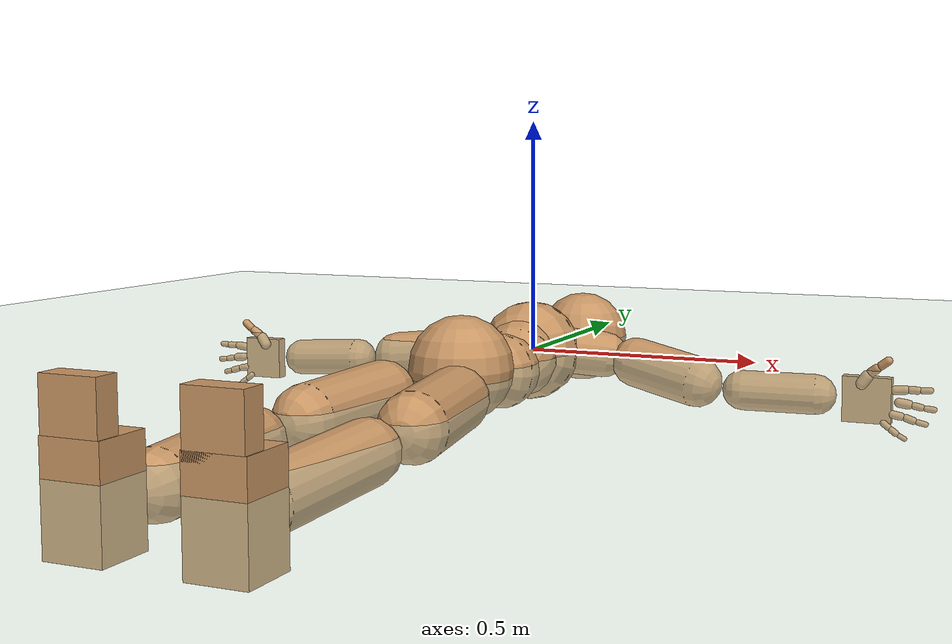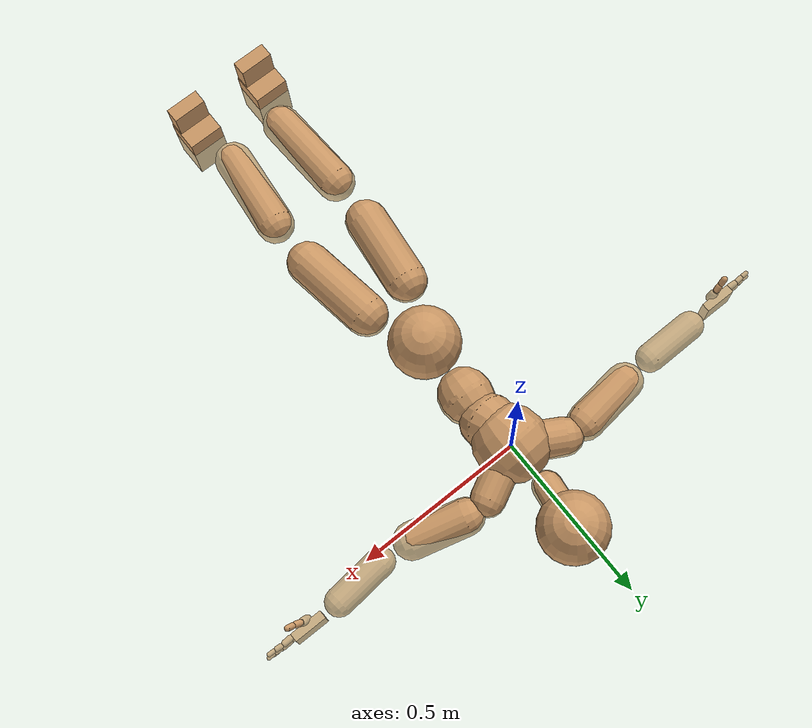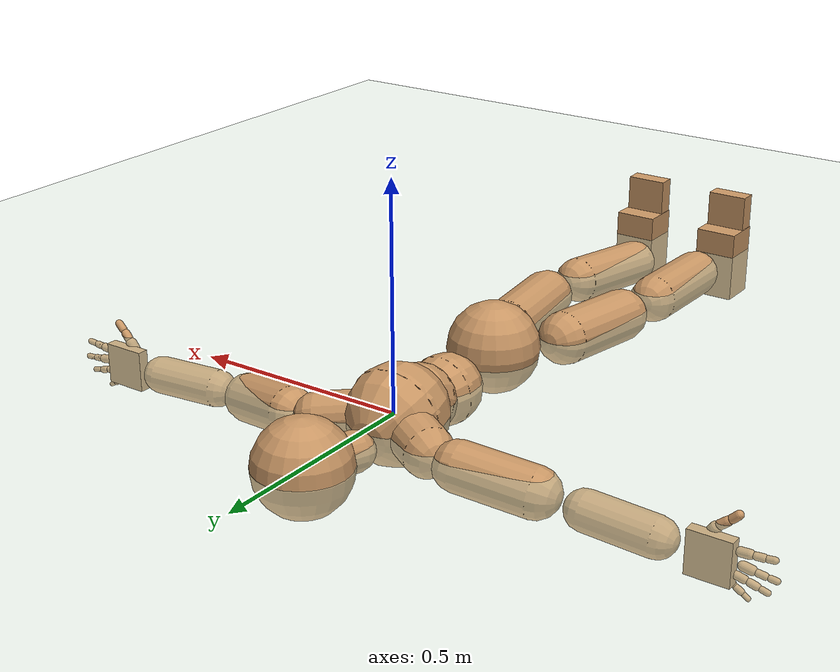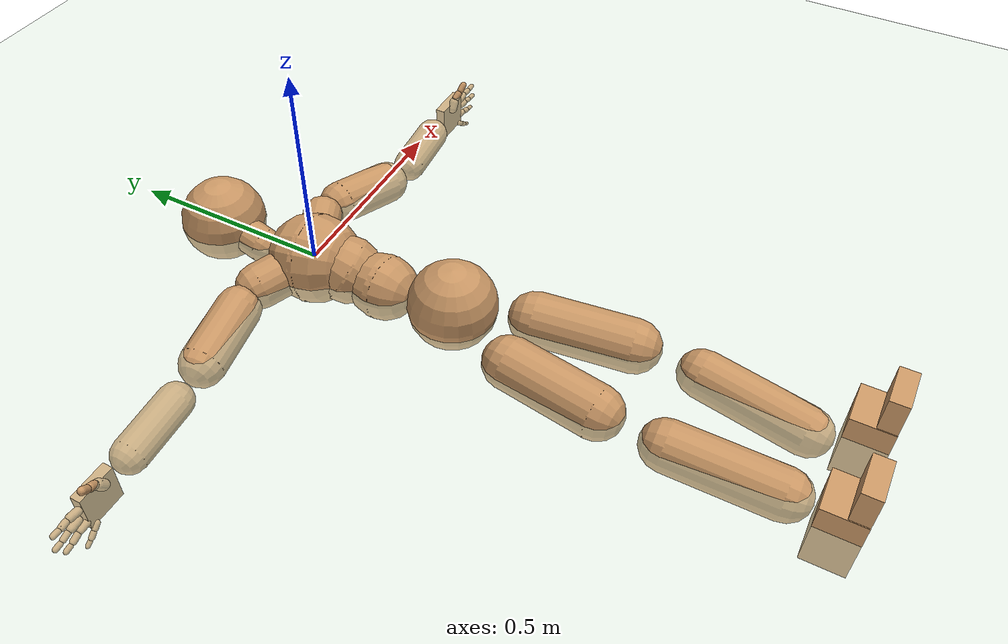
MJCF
<mujoco model="humanoid">
  <compiler coordinate="local"/>
  <default>
    <joint damping="0.0" armature="0.01" stiffness="0.0" limited="true"/>
    <geom conaffinity="1" condim="3" contype="7" margin="0.001" rgba="0.8 0.6 .4 1"/>
  </default>
  <asset>
    <texture type="skybox" builtin="gradient" rgb1=".4 .5 .6" rgb2="0 0 0" width="100" height="100"/>
    <texture builtin="flat" height="1278" mark="cross" markrgb="1 1 1" name="texgeom" random="0.01" rgb1="0.8 0.6 0.4" rgb2="0.8 0.6 0.4" type="cube" width="127"/>
    <texture builtin="checker" height="100" name="texplane" rgb1="0 0 0" rgb2="0.8 0.8 0.8" type="2d" width="100"/>
    <material name="MatPlane" reflectance="0.5" shininess="1" specular="1" texrepeat="60 60" texture="texplane"/>
    <material name="geom" texture="texgeom" texuniform="true"/>
  </asset>
  <worldbody>
    <light cutoff="100" diffuse="1 1 1" dir="-0 0 -1.3" directional="true" exponent="1" pos="0 0 1.3" specular=".1 .1 .1"/>
    <geom conaffinity="1" condim="3" name="floor" pos="0 0 0" rgba="0.8 0.9 0.8 1" size="100 100 .2" type="plane" material="MatPlane"/>
    <body name="Pelvis" pos="0.0033 -0.3741 0.0149">
      <freejoint name="Pelvis"/>
      <geom type="sphere" contype="1" conaffinity="1" density="4629.6296296296305" size="0.1043" pos="0.0000 0.0000 0.0000" name="Pelvis"/>
      <body name="L_Hip" pos="0.0613 -0.097 -0.0256">
        <joint name="L_Hip_x" type="hinge" pos="0 0 0" axis="1 0 0" user="250 2.5 1 500 10 2" armature="0.01" range="-90.0000 90.0000" damping="0" stiffness="0"/>
        <joint name="L_Hip_y" type="hinge" pos="0 0 0" axis="0 1 0" user="250 2.5 1 500 10 2" armature="0.01" range="-90.0000 90.0000" damping="0" stiffness="0"/>
        <joint name="L_Hip_z" type="hinge" pos="0 0 0" axis="0 0 1" user="250 2.5 1 500 10 2" armature="0.01" range="-90.0000 90.0000" damping="0" stiffness="0"/>
        <geom type="capsule" contype="1" conaffinity="1" density="2040.816327" fromto="0.0110 -0.0755 -0.0018 0.0441 -0.3020 -0.0071" size="0.0626" name="L_Hip"/>
        <body name="L_Knee" pos="0.0551 -0.3775 -0.0089">
          <joint name="L_Knee_x" type="hinge" pos="0 0 0" axis="1 0 0" user="250 2.5 1 500 10 2" armature="0.01" range="-180.0000 180.0000" damping="0" stiffness="0"/>
          <joint name="L_Knee_y" type="hinge" pos="0 0 0" axis="0 1 0" user="250 2.5 1 500 10 2" armature="0.01" range="-5.6250 5.6250" damping="0" stiffness="0"/>
          <joint name="L_Knee_z" type="hinge" pos="0 0 0" axis="0 0 1" user="250 2.5 1 500 10 2" armature="0.01" range="-5.6250 5.6250" damping="0" stiffness="0"/>
          <geom type="capsule" contype="1" conaffinity="1" density="1234.567901" fromto="-0.0092 -0.0808 -0.0067 -0.0367 -0.3233 -0.0268" size="0.0553" name="L_Knee"/>
          <body name="L_Ankle" pos="-0.0459 -0.4042 -0.0336">
            <joint name="L_Ankle_x" type="hinge" pos="0 0 0" axis="1 0 0" user="150 2.5 1 500 10 2" armature="0.01" range="-90.0000 90.0000" damping="0" stiffness="0"/>
            <joint name="L_Ankle_y" type="hinge" pos="0 0 0" axis="0 1 0" user="150 2.5 1 500 10 2" armature="0.01" range="-90.0000 90.0000" damping="0" stiffness="0"/>
            <joint name="L_Ankle_z" type="hinge" pos="0 0 0" axis="0 0 1" user="150 2.5 1 500 10 2" armature="0.01" range="-90.0000 90.0000" damping="0" stiffness="0"/>
            <geom type="box" density="450.99886" pos="0.0427 -0.0287 0.0234" size="0.0513 0.047 0.0872" quat="1.0000 0.0000 0.0000 0.0000" name="L_Ankle"/>
            <body name="L_Toe" pos="0.0496 -0.058 0.12">
              <joint name="L_Toe_x" type="hinge" pos="0 0 0" axis="1 0 0" user="150 1 1 500 1 1" armature="0.01" range="-90.0000 90.0000" damping="0" stiffness="0"/>
              <joint name="L_Toe_y" type="hinge" pos="0 0 0" axis="0 1 0" user="150 1 1 500 1 1" armature="0.01" range="-45.0000 45.0000" damping="0" stiffness="0"/>
              <joint name="L_Toe_z" type="hinge" pos="0 0 0" axis="0 0 1" user="150 1 1 500 1 1" armature="0.01" range="-45.0000 45.0000" damping="0" stiffness="0"/>
              <geom type="box" density="420.15556" pos="-0.0069 0.0032 0.0260" size="0.0491 0.0209 0.0504" quat="1.0000 0.0000 0.0000 0.0000" name="L_Toe"/>
            </body>
          </body>
        </body>
      </body>
      <body name="R_Hip" pos="-0.0663 -0.1085 -0.0206">
        <joint name="R_Hip_x" type="hinge" pos="0 0 0" axis="1 0 0" user="250 2.5 1 500 10 2" armature="0.01" range="-90.0000 90.0000" damping="0" stiffness="0"/>
        <joint name="R_Hip_y" type="hinge" pos="0 0 0" axis="0 1 0" user="250 2.5 1 500 10 2" armature="0.01" range="-90.0000 90.0000" damping="0" stiffness="0"/>
        <joint name="R_Hip_z" type="hinge" pos="0 0 0" axis="0 0 1" user="250 2.5 1 500 10 2" armature="0.01" range="-90.0000 90.0000" damping="0" stiffness="0"/>
        <geom type="capsule" contype="1" conaffinity="1" density="2040.816327" fromto="-0.0089 -0.0722 -0.0034 -0.0355 -0.2887 -0.0135" size="0.0619" name="R_Hip"/>
        <body name="R_Knee" pos="-0.0444 -0.3609 -0.0169">
          <joint name="R_Knee_x" type="hinge" pos="0 0 0" axis="1 0 0" user="250 2.5 1 500 10 2" armature="0.01" range="-180.0000 180.0000" damping="0" stiffness="0"/>
          <joint name="R_Knee_y" type="hinge" pos="0 0 0" axis="0 1 0" user="250 2.5 1 500 10 2" armature="0.01" range="-5.6250 5.6250" damping="0" stiffness="0"/>
          <joint name="R_Knee_z" type="hinge" pos="0 0 0" axis="0 0 1" user="250 2.5 1 500 10 2" armature="0.01" range="-5.6250 5.6250" damping="0" stiffness="0"/>
          <geom type="capsule" contype="1" conaffinity="1" density="1234.567901" fromto="0.0032 -0.0823 -0.0043 0.0130 -0.3294 -0.0170" size="0.0571" name="R_Knee"/>
          <body name="R_Ankle" pos="0.0162 -0.4117 -0.0213">
            <joint name="R_Ankle_x" type="hinge" pos="0 0 0" axis="1 0 0" user="150 1 1 500 10 2" armature="0.01" range="-90.0000 90.0000" damping="0" stiffness="0"/>
            <joint name="R_Ankle_y" type="hinge" pos="0 0 0" axis="0 1 0" user="150 1 1 500 10 2" armature="0.01" range="-90.0000 90.0000" damping="0" stiffness="0"/>
            <joint name="R_Ankle_z" type="hinge" pos="0 0 0" axis="0 0 1" user="150 1 1 500 10 2" armature="0.01" range="-90.0000 90.0000" damping="0" stiffness="0"/>
            <geom type="box" density="450.986534" pos="-0.0252 -0.0263 0.0141" size="0.0513 0.047 0.0872" quat="1.0000 0.0000 0.0000 0.0000" name="R_Ankle"/>
            <body name="R_Toe" pos="-0.0403 -0.0583 0.1208">
              <joint name="R_Toe_x" type="hinge" pos="0 0 0" axis="1 0 0" user="150 1 1 500 1 1" armature="0.01" range="-90.0000 90.0000" damping="0" stiffness="0"/>
              <joint name="R_Toe_y" type="hinge" pos="0 0 0" axis="0 1 0" user="150 1 1 500 1 1" armature="0.01" range="-45.0000 45.0000" damping="0" stiffness="0"/>
              <joint name="R_Toe_z" type="hinge" pos="0 0 0" axis="0 0 1" user="150 1 1 500 1 1" armature="0.01" range="-45.0000 45.0000" damping="0" stiffness="0"/>
              <geom type="box" density="420.154717" pos="0.0151 0.0059 0.0159" size="0.0491 0.0209 0.0504" quat="1.0000 0.0000 0.0000 0.0000" name="R_Toe"/>
            </body>
          </body>
        </body>
      </body>
      <body name="Torso" pos="-0.0031 0.1153 -0.0305">
        <joint name="Torso_x" type="hinge" pos="0 0 0" axis="1 0 0" user="500 5 1 500 10 2" armature="0.01" range="-60.0000 60.0000" damping="0" stiffness="0"/>
        <joint name="Torso_y" type="hinge" pos="0 0 0" axis="0 1 0" user="500 5 1 500 10 2" armature="0.01" range="-60.0000 60.0000" damping="0" stiffness="0"/>
        <joint name="Torso_z" type="hinge" pos="0 0 0" axis="0 0 1" user="500 5 1 500 10 2" armature="0.01" range="-60.0000 60.0000" damping="0" stiffness="0"/>
        <geom type="capsule" contype="1" conaffinity="1" density="2040.816327" fromto="0.0049 0.0628 -0.0030 0.0060 0.0768 -0.0037" size="0.0776" name="Torso"/>
        <body name="Spine" pos="0.0109 0.1397 -0.0067">
          <joint name="Spine_x" type="hinge" pos="0 0 0" axis="1 0 0" user="500 5 1 500 10 2" armature="0.01" range="-60.0000 60.0000" damping="0" stiffness="0"/>
          <joint name="Spine_y" type="hinge" pos="0 0 0" axis="0 1 0" user="500 5 1 500 10 2" armature="0.01" range="-60.0000 60.0000" damping="0" stiffness="0"/>
          <joint name="Spine_z" type="hinge" pos="0 0 0" axis="0 0 1" user="500 5 1 500 10 2" armature="0.01" range="-60.0000 60.0000" damping="0" stiffness="0"/>
          <geom type="capsule" contype="1" conaffinity="1" density="2040.816327" fromto="-0.0055 0.0247 0.0141 -0.0067 0.0301 0.0172" size="0.0807" name="Spine"/>
          <body name="Chest" pos="-0.0121 0.0548 0.0313">
            <joint name="Chest_x" type="hinge" pos="0 0 0" axis="1 0 0" user="500 5 1 500 10 2" armature="0.01" range="-60.0000 60.0000" damping="0" stiffness="0"/>
            <joint name="Chest_y" type="hinge" pos="0 0 0" axis="0 1 0" user="500 5 1 500 10 2" armature="0.01" range="-60.0000 60.0000" damping="0" stiffness="0"/>
            <joint name="Chest_z" type="hinge" pos="0 0 0" axis="0 0 1" user="500 5 1 500 10 2" armature="0.01" range="-60.0000 60.0000" damping="0" stiffness="0"/>
            <geom type="capsule" contype="1" conaffinity="1" density="2040.816327" fromto="-0.0023 0.0528 -0.0089 -0.0028 0.0646 -0.0109" size="0.1073" name="Chest"/>
            <body name="Neck" pos="-0.0129 0.1744 -0.0355">
              <joint name="Neck_x" type="hinge" pos="0 0 0" axis="1 0 0" user="150 1 1 250 50 4" armature="0.01" range="-180.0000 180.0000" damping="0" stiffness="0"/>
              <joint name="Neck_y" type="hinge" pos="0 0 0" axis="0 1 0" user="150 1 1 250 50 4" armature="0.01" range="-180.0000 180.0000" damping="0" stiffness="0"/>
              <joint name="Neck_z" type="hinge" pos="0 0 0" axis="0 0 1" user="150 1 1 250 50 4" armature="0.01" range="-180.0000 180.0000" damping="0" stiffness="0"/>
              <geom type="capsule" contype="1" conaffinity="1" density="1000" fromto="0.0051 0.0335 0.0043 0.0205 0.1340 0.0171" size="0.0435" name="Neck"/>
              <body name="Head" pos="0.0256 0.1675 0.0214">
                <joint name="Head_x" type="hinge" pos="0 0 0" axis="1 0 0" user="150 1 1 250 50 4" armature="0.01" range="-90.0000 90.0000" damping="0" stiffness="0"/>
                <joint name="Head_y" type="hinge" pos="0 0 0" axis="0 1 0" user="150 1 1 250 50 4" armature="0.01" range="-90.0000 90.0000" damping="0" stiffness="0"/>
                <joint name="Head_z" type="hinge" pos="0 0 0" axis="0 0 1" user="150 1 1 250 50 4" armature="0.01" range="-90.0000 90.0000" damping="0" stiffness="0"/>
                <geom type="sphere" contype="1" conaffinity="1" density="1000" size="0.1035" pos="0.0000 0.0000 0.0000" name="Head"/>
              </body>
            </body>
            <body name="L_Thorax" pos="0.0467 0.0892 -0.0089">
              <joint name="L_Thorax_x" type="hinge" pos="0 0 0" axis="1 0 0" user="200 2 1 500 50 4" armature="0.01" range="-180.0000 180.0000" damping="0" stiffness="0"/>
              <joint name="L_Thorax_y" type="hinge" pos="0 0 0" axis="0 1 0" user="200 2 1 500 50 4" armature="0.01" range="-180.0000 180.0000" damping="0" stiffness="0"/>
              <joint name="L_Thorax_z" type="hinge" pos="0 0 0" axis="0 0 1" user="200 2 1 500 50 4" armature="0.01" range="-180.0000 180.0000" damping="0" stiffness="0"/>
              <geom type="capsule" contype="1" conaffinity="1" density="1000" fromto="0.0239 0.0120 -0.0034 0.0957 0.0478 -0.0136" size="0.0502" name="L_Thorax"/>
              <body name="L_Shoulder" pos="0.1197 0.0598 -0.017">
                <joint name="L_Shoulder_x" type="hinge" pos="0 0 0" axis="1 0 0" user="200 2 1 500 50 4" armature="0.01" range="-180.0000 180.0000" damping="0" stiffness="0"/>
                <joint name="L_Shoulder_y" type="hinge" pos="0 0 0" axis="0 1 0" user="200 2 1 500 50 4" armature="0.01" range="-180.0000 180.0000" damping="0" stiffness="0"/>
                <joint name="L_Shoulder_z" type="hinge" pos="0 0 0" axis="0 0 1" user="200 2 1 500 50 4" armature="0.01" range="-180.0000 180.0000" damping="0" stiffness="0"/>
                <geom type="capsule" contype="1" conaffinity="1" density="1000" fromto="0.0505 -0.0147 -0.0088 0.2022 -0.0586 -0.0354" size="0.0539" name="L_Shoulder"/>
                <body name="L_Elbow" pos="0.2527 -0.0733 -0.0442">
                  <joint name="L_Elbow_x" type="hinge" pos="0 0 0" axis="1 0 0" user="150 1 1 150 10 2" armature="0.01" range="-720.0000 720.0000" damping="0" stiffness="0"/>
                  <joint name="L_Elbow_y" type="hinge" pos="0 0 0" axis="0 1 0" user="150 1 1 150 10 2" armature="0.01" range="-720.0000 720.0000" damping="0" stiffness="0"/>
                  <joint name="L_Elbow_z" type="hinge" pos="0 0 0" axis="0 0 1" user="150 1 1 150 10 2" armature="0.01" range="-720.0000 720.0000" damping="0" stiffness="0"/>
                  <geom type="capsule" contype="1" conaffinity="1" density="1000" fromto="0.0505 0.0049 -0.0004 0.2019 0.0196 -0.0015" size="0.0417" name="L_Elbow"/>
                  <body name="L_Wrist" pos="0.2523 0.0245 -0.0018">
                    <joint name="L_Wrist_x" type="hinge" pos="0 0 0" axis="1 0 0" user="100 1 1 150 1 1" armature="0.01" range="-180.0000 180.0000" damping="0" stiffness="0"/>
                    <joint name="L_Wrist_y" type="hinge" pos="0 0 0" axis="0 1 0" user="100 1 1 150 1 1" armature="0.01" range="-180.0000 180.0000" damping="0" stiffness="0"/>
                    <joint name="L_Wrist_z" type="hinge" pos="0 0 0" axis="0 0 1" user="100 1 1 150 1 1" armature="0.01" range="-180.0000 180.0000" damping="0" stiffness="0"/>
                    <geom type="box" density="1205.156738" pos="0.0531 -0.0011 -0.0031" size="0.0492 0.0126 0.0471" quat="1.0000 0.0000 0.0000 0.0000" name="L_Wrist"/>
                    <body name="L_Index1" pos="0.1034 -0.0085 0.0199">
                      <joint name="L_Index1_x" type="hinge" pos="0 0 0" axis="1 0 0" user="100 10 1 150" armature="0.01" range="-180.0000 180.0000" damping="0" stiffness="0"/>
                      <joint name="L_Index1_y" type="hinge" pos="0 0 0" axis="0 1 0" user="100 10 1 150" armature="0.01" range="-180.0000 180.0000" damping="0" stiffness="0"/>
                      <joint name="L_Index1_z" type="hinge" pos="0 0 0" axis="0 0 1" user="100 10 1 150" armature="0.01" range="-180.0000 180.0000" damping="0" stiffness="0"/>
                      <geom type="capsule" contype="1" conaffinity="1" density="1000" fromto="0.0065 0.0005 0.0006 0.0258 0.0019 0.0024" size="0.0094" name="L_Index1"/>
                      <body name="L_Index2" pos="0.0323 0.0024 0.003">
                        <joint name="L_Index2_x" type="hinge" pos="0 0 0" axis="1 0 0" user="100 10 1 150" armature="0.01" range="-180.0000 180.0000" damping="0" stiffness="0"/>
                        <joint name="L_Index2_y" type="hinge" pos="0 0 0" axis="0 1 0" user="100 10 1 150" armature="0.01" range="-180.0000 180.0000" damping="0" stiffness="0"/>
                        <joint name="L_Index2_z" type="hinge" pos="0 0 0" axis="0 0 1" user="100 10 1 150" armature="0.01" range="-180.0000 180.0000" damping="0" stiffness="0"/>
                        <geom type="capsule" contype="1" conaffinity="1" density="1000" fromto="0.0045 -0.0005 -0.0000 0.0182 -0.0019 -0.0000" size="0.0078" name="L_Index2"/>
                        <body name="L_Index3" pos="0.0227 -0.0024 0">
                          <joint name="L_Index3_x" type="hinge" pos="0 0 0" axis="1 0 0" user="100 10 1 150" armature="0.01" range="-180.0000 180.0000" damping="0" stiffness="0"/>
                          <joint name="L_Index3_y" type="hinge" pos="0 0 0" axis="0 1 0" user="100 10 1 150" armature="0.01" range="-180.0000 180.0000" damping="0" stiffness="0"/>
                          <joint name="L_Index3_z" type="hinge" pos="0 0 0" axis="0 0 1" user="100 10 1 150" armature="0.01" range="-180.0000 180.0000" damping="0" stiffness="0"/>
                          <geom type="capsule" contype="1" conaffinity="1" density="1000" fromto="0.0049 -0.0001 0.0004 0.0198 -0.0003 0.0016" size="0.0065" name="L_Index3"/>
                        </body>
                      </body>
                    </body>
                    <body name="L_Middle1" pos="0.111 -0.006 -0.004">
                      <joint name="L_Middle1_x" type="hinge" pos="0 0 0" axis="1 0 0" user="100 10 1 150" armature="0.01" range="-180.0000 180.0000" damping="0" stiffness="0"/>
                      <joint name="L_Middle1_y" type="hinge" pos="0 0 0" axis="0 1 0" user="100 10 1 150" armature="0.01" range="-180.0000 180.0000" damping="0" stiffness="0"/>
                      <joint name="L_Middle1_z" type="hinge" pos="0 0 0" axis="0 0 1" user="100 10 1 150" armature="0.01" range="-180.0000 180.0000" damping="0" stiffness="0"/>
                      <geom type="capsule" contype="1" conaffinity="1" density="1000" fromto="0.0062 0.0002 -0.0008 0.0247 0.0007 -0.0033" size="0.0096" name="L_Middle1"/>
                      <body name="L_Middle2" pos="0.0309 0.0009 -0.0041">
                        <joint name="L_Middle2_x" type="hinge" pos="0 0 0" axis="1 0 0" user="100 10 1 150" armature="0.01" range="-180.0000 180.0000" damping="0" stiffness="0"/>
                        <joint name="L_Middle2_y" type="hinge" pos="0 0 0" axis="0 1 0" user="100 10 1 150" armature="0.01" range="-180.0000 180.0000" damping="0" stiffness="0"/>
                        <joint name="L_Middle2_z" type="hinge" pos="0 0 0" axis="0 0 1" user="100 10 1 150" armature="0.01" range="-180.0000 180.0000" damping="0" stiffness="0"/>
                        <geom type="capsule" contype="1" conaffinity="1" density="1000" fromto="0.0047 -0.0004 -0.0008 0.0189 -0.0016 -0.0034" size="0.0071" name="L_Middle2"/>
                        <body name="L_Middle3" pos="0.0237 -0.002 -0.0042">
                          <joint name="L_Middle3_x" type="hinge" pos="0 0 0" axis="1 0 0" user="100 10 1 150" armature="0.01" range="-180.0000 180.0000" damping="0" stiffness="0"/>
                          <joint name="L_Middle3_y" type="hinge" pos="0 0 0" axis="0 1 0" user="100 10 1 150" armature="0.01" range="-180.0000 180.0000" damping="0" stiffness="0"/>
                          <joint name="L_Middle3_z" type="hinge" pos="0 0 0" axis="0 0 1" user="100 10 1 150" armature="0.01" range="-180.0000 180.0000" damping="0" stiffness="0"/>
                          <geom type="capsule" contype="1" conaffinity="1" density="1000" fromto="0.0051 -0.0000 -0.0004 0.0205 -0.0000 -0.0018" size="0.0062" name="L_Middle3"/>
                        </body>
                      </body>
                    </body>
                    <body name="L_Pinky1" pos="0.0853 -0.0147 -0.0448">
                      <joint name="L_Pinky1_x" type="hinge" pos="0 0 0" axis="1 0 0" user="100 10 1 150" armature="0.01" range="-180.0000 180.0000" damping="0" stiffness="0"/>
                      <joint name="L_Pinky1_y" type="hinge" pos="0 0 0" axis="0 1 0" user="100 10 1 150" armature="0.01" range="-180.0000 180.0000" damping="0" stiffness="0"/>
                      <joint name="L_Pinky1_z" type="hinge" pos="0 0 0" axis="0 0 1" user="100 10 1 150" armature="0.01" range="-180.0000 180.0000" damping="0" stiffness="0"/>
                      <geom type="capsule" contype="1" conaffinity="1" density="1000" fromto="0.0031 -0.0002 -0.0024 0.0126 -0.0010 -0.0097" size="0.0068" name="L_Pinky1"/>
                      <body name="L_Pinky2" pos="0.0157 -0.0012 -0.0121">
                        <joint name="L_Pinky2_x" type="hinge" pos="0 0 0" axis="1 0 0" user="100 10 1 150" armature="0.01" range="-180.0000 180.0000" damping="0" stiffness="0"/>
                        <joint name="L_Pinky2_y" type="hinge" pos="0 0 0" axis="0 1 0" user="100 10 1 150" armature="0.01" range="-180.0000 180.0000" damping="0" stiffness="0"/>
                        <joint name="L_Pinky2_z" type="hinge" pos="0 0 0" axis="0 0 1" user="100 10 1 150" armature="0.01" range="-180.0000 180.0000" damping="0" stiffness="0"/>
                        <geom type="capsule" contype="1" conaffinity="1" density="1000" fromto="0.0031 -0.0003 -0.0022 0.0126 -0.0014 -0.0090" size="0.0066" name="L_Pinky2"/>
                        <body name="L_Pinky3" pos="0.0157 -0.0017 -0.0112">
                          <joint name="L_Pinky3_x" type="hinge" pos="0 0 0" axis="1 0 0" user="100 10 1 150" armature="0.01" range="-180.0000 180.0000" damping="0" stiffness="0"/>
                          <joint name="L_Pinky3_y" type="hinge" pos="0 0 0" axis="0 1 0" user="100 10 1 150" armature="0.01" range="-180.0000 180.0000" damping="0" stiffness="0"/>
                          <joint name="L_Pinky3_z" type="hinge" pos="0 0 0" axis="0 0 1" user="100 10 1 150" armature="0.01" range="-180.0000 180.0000" damping="0" stiffness="0"/>
                          <geom type="capsule" contype="1" conaffinity="1" density="1000" fromto="0.0035 0.0001 -0.0018 0.0142 0.0002 -0.0074" size="0.005" name="L_Pinky3"/>
                        </body>
                      </body>
                    </body>
                    <body name="L_Ring1" pos="0.0989 -0.0091 -0.028">
                      <joint name="L_Ring1_x" type="hinge" pos="0 0 0" axis="1 0 0" user="100 10 1 150" armature="0.01" range="-180.0000 180.0000" damping="0" stiffness="0"/>
                      <joint name="L_Ring1_y" type="hinge" pos="0 0 0" axis="0 1 0" user="100 10 1 150" armature="0.01" range="-180.0000 180.0000" damping="0" stiffness="0"/>
                      <joint name="L_Ring1_z" type="hinge" pos="0 0 0" axis="0 0 1" user="100 10 1 150" armature="0.01" range="-180.0000 180.0000" damping="0" stiffness="0"/>
                      <geom type="capsule" contype="1" conaffinity="1" density="1000" fromto="0.0057 0.0003 -0.0011 0.0227 0.0013 -0.0042" size="0.0082" name="L_Ring1"/>
                      <body name="L_Ring2" pos="0.0284 0.0016 -0.0053">
                        <joint name="L_Ring2_x" type="hinge" pos="0 0 0" axis="1 0 0" user="100 10 1 150" armature="0.01" range="-180.0000 180.0000" damping="0" stiffness="0"/>
                        <joint name="L_Ring2_y" type="hinge" pos="0 0 0" axis="0 1 0" user="100 10 1 150" armature="0.01" range="-180.0000 180.0000" damping="0" stiffness="0"/>
                        <joint name="L_Ring2_z" type="hinge" pos="0 0 0" axis="0 0 1" user="100 10 1 150" armature="0.01" range="-180.0000 180.0000" damping="0" stiffness="0"/>
                        <geom type="capsule" contype="1" conaffinity="1" density="1000" fromto="0.0046 -0.0003 -0.0014 0.0184 -0.0012 -0.0057" size="0.0076" name="L_Ring2"/>
                        <body name="L_Ring3" pos="0.023 -0.0015 -0.0072">
                          <joint name="L_Ring3_x" type="hinge" pos="0 0 0" axis="1 0 0" user="100 10 1 150" armature="0.01" range="-180.0000 180.0000" damping="0" stiffness="0"/>
                          <joint name="L_Ring3_y" type="hinge" pos="0 0 0" axis="0 1 0" user="100 10 1 150" armature="0.01" range="-180.0000 180.0000" damping="0" stiffness="0"/>
                          <joint name="L_Ring3_z" type="hinge" pos="0 0 0" axis="0 0 1" user="100 10 1 150" armature="0.01" range="-180.0000 180.0000" damping="0" stiffness="0"/>
                          <geom type="capsule" contype="1" conaffinity="1" density="1000" fromto="0.0050 0.0001 -0.0010 0.0200 0.0004 -0.0041" size="0.0058" name="L_Ring3"/>
                        </body>
                      </body>
                    </body>
                    <body name="L_Thumb1" pos="0.041 -0.0184 0.0266">
                      <joint name="L_Thumb1_x" type="hinge" pos="0 0 0" axis="1 0 0" user="100 10 1 150" armature="0.01" range="-180.0000 180.0000" damping="0" stiffness="0"/>
                      <joint name="L_Thumb1_y" type="hinge" pos="0 0 0" axis="0 1 0" user="100 10 1 150" armature="0.01" range="-180.0000 180.0000" damping="0" stiffness="0"/>
                      <joint name="L_Thumb1_z" type="hinge" pos="0 0 0" axis="0 0 1" user="100 10 1 150" armature="0.01" range="-180.0000 180.0000" damping="0" stiffness="0"/>
                      <geom type="capsule" contype="1" conaffinity="1" density="1000" fromto="0.0034 0.0002 0.0051 0.0138 0.0009 0.0203" size="0.0124" name="L_Thumb1"/>
                      <body name="L_Thumb2" pos="0.0172 0.0011 0.0254">
                        <joint name="L_Thumb2_x" type="hinge" pos="0 0 0" axis="1 0 0" user="100 10 1 150" armature="0.01" range="-180.0000 180.0000" damping="0" stiffness="0"/>
                        <joint name="L_Thumb2_y" type="hinge" pos="0 0 0" axis="0 1 0" user="100 10 1 150" armature="0.01" range="-180.0000 180.0000" damping="0" stiffness="0"/>
                        <joint name="L_Thumb2_z" type="hinge" pos="0 0 0" axis="0 0 1" user="100 10 1 150" armature="0.01" range="-180.0000 180.0000" damping="0" stiffness="0"/>
                        <geom type="capsule" contype="1" conaffinity="1" density="1000" fromto="0.0042 -0.0010 0.0031 0.0167 -0.0042 0.0125" size="0.0098" name="L_Thumb2"/>
                        <body name="L_Thumb3" pos="0.0208 -0.0052 0.0157">
                          <joint name="L_Thumb3_x" type="hinge" pos="0 0 0" axis="1 0 0" user="100 10 1 150" armature="0.01" range="-180.0000 180.0000" damping="0" stiffness="0"/>
                          <joint name="L_Thumb3_y" type="hinge" pos="0 0 0" axis="0 1 0" user="100 10 1 150" armature="0.01" range="-180.0000 180.0000" damping="0" stiffness="0"/>
                          <joint name="L_Thumb3_z" type="hinge" pos="0 0 0" axis="0 0 1" user="100 10 1 150" armature="0.01" range="-180.0000 180.0000" damping="0" stiffness="0"/>
                          <geom type="capsule" contype="1" conaffinity="1" density="1000" fromto="0.0046 -0.0006 0.0035 0.0183 -0.0026 0.0141" size="0.0089" name="L_Thumb3"/>
                        </body>
                      </body>
                    </body>
                  </body>
                </body>
              </body>
            </body>
            <body name="R_Thorax" pos="-0.0491 0.0886 -0.0152">
              <joint name="R_Thorax_x" type="hinge" pos="0 0 0" axis="1 0 0" user="200 2 1 150 10 2" armature="0.01" range="-180.0000 180.0000" damping="0" stiffness="0"/>
              <joint name="R_Thorax_y" type="hinge" pos="0 0 0" axis="0 1 0" user="200 2 1 150 10 2" armature="0.01" range="-180.0000 180.0000" damping="0" stiffness="0"/>
              <joint name="R_Thorax_z" type="hinge" pos="0 0 0" axis="0 0 1" user="200 2 1 150 10 2" armature="0.01" range="-180.0000 180.0000" damping="0" stiffness="0"/>
              <geom type="capsule" contype="1" conaffinity="1" density="1000" fromto="-0.0205 0.0110 -0.0029 -0.0822 0.0441 -0.0115" size="0.0552" name="R_Thorax"/>
              <body name="R_Shoulder" pos="-0.1027 0.0551 -0.0144">
                <joint name="R_Shoulder_x" type="hinge" pos="0 0 0" axis="1 0 0" user="200 2 1 250 10 2" armature="0.01" range="-180.0000 180.0000" damping="0" stiffness="0"/>
                <joint name="R_Shoulder_y" type="hinge" pos="0 0 0" axis="0 1 0" user="200 2 1 250 10 2" armature="0.01" range="-180.0000 180.0000" damping="0" stiffness="0"/>
                <joint name="R_Shoulder_z" type="hinge" pos="0 0 0" axis="0 0 1" user="200 2 1 250 10 2" armature="0.01" range="-180.0000 180.0000" damping="0" stiffness="0"/>
                <geom type="capsule" contype="1" conaffinity="1" density="1000" fromto="-0.0540 -0.0071 -0.0055 -0.2159 -0.0285 -0.0219" size="0.0538" name="R_Shoulder"/>
                <body name="R_Elbow" pos="-0.2699 -0.0356 -0.0273">
                  <joint name="R_Elbow_x" type="hinge" pos="0 0 0" axis="1 0 0" user="150 1 1 150 10 2" armature="0.01" range="-720.0000 720.0000" damping="0" stiffness="0"/>
                  <joint name="R_Elbow_y" type="hinge" pos="0 0 0" axis="0 1 0" user="150 1 1 150 10 2" armature="0.01" range="-720.0000 720.0000" damping="0" stiffness="0"/>
                  <joint name="R_Elbow_z" type="hinge" pos="0 0 0" axis="0 0 1" user="150 1 1 150 10 2" armature="0.01" range="-720.0000 720.0000" damping="0" stiffness="0"/>
                  <geom type="capsule" contype="1" conaffinity="1" density="1000" fromto="-0.0499 -0.0009 -0.0030 -0.1997 -0.0038 -0.0120" size="0.042" name="R_Elbow"/>
                  <body name="R_Wrist" pos="-0.2496 -0.0047 -0.0149">
                    <joint name="R_Wrist_x" type="hinge" pos="0 0 0" axis="1 0 0" user="100 1 1 150 1 1" armature="0.01" range="-180.0000 180.0000" damping="0" stiffness="0"/>
                    <joint name="R_Wrist_y" type="hinge" pos="0 0 0" axis="0 1 0" user="100 1 1 150 1 1" armature="0.01" range="-180.0000 180.0000" damping="0" stiffness="0"/>
                    <joint name="R_Wrist_z" type="hinge" pos="0 0 0" axis="0 0 1" user="100 1 1 150 1 1" armature="0.01" range="-180.0000 180.0000" damping="0" stiffness="0"/>
                    <geom type="box" density="1238.501672" pos="-0.0546 -0.0043 -0.0032" size="0.0462 0.0126 0.0471" quat="1.0000 0.0000 0.0000 0.0000" name="R_Wrist"/>
                    <body name="R_Index1" pos="-0.1015 -0.0116 0.0199">
                      <joint name="R_Index1_x" type="hinge" pos="0 0 0" axis="1 0 0" user="100 10 1 150" armature="0.01" range="-180.0000 180.0000" damping="0" stiffness="0"/>
                      <joint name="R_Index1_y" type="hinge" pos="0 0 0" axis="0 1 0" user="100 10 1 150" armature="0.01" range="-180.0000 180.0000" damping="0" stiffness="0"/>
                      <joint name="R_Index1_z" type="hinge" pos="0 0 0" axis="0 0 1" user="100 10 1 150" armature="0.01" range="-180.0000 180.0000" damping="0" stiffness="0"/>
                      <geom type="capsule" contype="1" conaffinity="1" density="1000" fromto="-0.0065 0.0005 0.0006 -0.0258 0.0019 0.0024" size="0.0094" name="R_Index1"/>
                      <body name="R_Index2" pos="-0.0323 0.0024 0.003">
                        <joint name="R_Index2_x" type="hinge" pos="0 0 0" axis="1 0 0" user="100 10 1 150" armature="0.01" range="-180.0000 180.0000" damping="0" stiffness="0"/>
                        <joint name="R_Index2_y" type="hinge" pos="0 0 0" axis="0 1 0" user="100 10 1 150" armature="0.01" range="-180.0000 180.0000" damping="0" stiffness="0"/>
                        <joint name="R_Index2_z" type="hinge" pos="0 0 0" axis="0 0 1" user="100 10 1 150" armature="0.01" range="-180.0000 180.0000" damping="0" stiffness="0"/>
                        <geom type="capsule" contype="1" conaffinity="1" density="1000" fromto="-0.0045 -0.0005 -0.0000 -0.0182 -0.0019 -0.0000" size="0.0078" name="R_Index2"/>
                        <body name="R_Index3" pos="-0.0227 -0.0024 0">
                          <joint name="R_Index3_x" type="hinge" pos="0 0 0" axis="1 0 0" user="100 10 1 150" armature="0.01" range="-180.0000 180.0000" damping="0" stiffness="0"/>
                          <joint name="R_Index3_y" type="hinge" pos="0 0 0" axis="0 1 0" user="100 10 1 150" armature="0.01" range="-180.0000 180.0000" damping="0" stiffness="0"/>
                          <joint name="R_Index3_z" type="hinge" pos="0 0 0" axis="0 0 1" user="100 10 1 150" armature="0.01" range="-180.0000 180.0000" damping="0" stiffness="0"/>
                          <geom type="capsule" contype="1" conaffinity="1" density="1000" fromto="-0.0041 -0.0001 0.0004 -0.0166 -0.0003 0.0016" size="0.0068" name="R_Index3"/>
                        </body>
                      </body>
                    </body>
                    <body name="R_Middle1" pos="-0.109 -0.0091 -0.0041">
                      <joint name="R_Middle1_x" type="hinge" pos="0 0 0" axis="1 0 0" user="100 10 1 150" armature="0.01" range="-180.0000 180.0000" damping="0" stiffness="0"/>
                      <joint name="R_Middle1_y" type="hinge" pos="0 0 0" axis="0 1 0" user="100 10 1 150" armature="0.01" range="-180.0000 180.0000" damping="0" stiffness="0"/>
                      <joint name="R_Middle1_z" type="hinge" pos="0 0 0" axis="0 0 1" user="100 10 1 150" armature="0.01" range="-180.0000 180.0000" damping="0" stiffness="0"/>
                      <geom type="capsule" contype="1" conaffinity="1" density="1000" fromto="-0.0062 0.0002 -0.0008 -0.0247 0.0007 -0.0033" size="0.0096" name="R_Middle1"/>
                      <body name="R_Middle2" pos="-0.0309 0.0009 -0.0041">
                        <joint name="R_Middle2_x" type="hinge" pos="0 0 0" axis="1 0 0" user="100 10 1 150" armature="0.01" range="-180.0000 180.0000" damping="0" stiffness="0"/>
                        <joint name="R_Middle2_y" type="hinge" pos="0 0 0" axis="0 1 0" user="100 10 1 150" armature="0.01" range="-180.0000 180.0000" damping="0" stiffness="0"/>
                        <joint name="R_Middle2_z" type="hinge" pos="0 0 0" axis="0 0 1" user="100 10 1 150" armature="0.01" range="-180.0000 180.0000" damping="0" stiffness="0"/>
                        <geom type="capsule" contype="1" conaffinity="1" density="1000" fromto="-0.0047 -0.0004 -0.0008 -0.0189 -0.0016 -0.0034" size="0.0071" name="R_Middle2"/>
                        <body name="R_Middle3" pos="-0.0237 -0.002 -0.0042">
                          <joint name="R_Middle3_x" type="hinge" pos="0 0 0" axis="1 0 0" user="100 10 1 150" armature="0.01" range="-180.0000 180.0000" damping="0" stiffness="0"/>
                          <joint name="R_Middle3_y" type="hinge" pos="0 0 0" axis="0 1 0" user="100 10 1 150" armature="0.01" range="-180.0000 180.0000" damping="0" stiffness="0"/>
                          <joint name="R_Middle3_z" type="hinge" pos="0 0 0" axis="0 0 1" user="100 10 1 150" armature="0.01" range="-180.0000 180.0000" damping="0" stiffness="0"/>
                          <geom type="capsule" contype="1" conaffinity="1" density="1000" fromto="-0.0043 -0.0000 -0.0004 -0.0173 -0.0000 -0.0018" size="0.0064" name="R_Middle3"/>
                        </body>
                      </body>
                    </body>
                    <body name="R_Pinky1" pos="-0.0833 -0.0178 -0.0449">
                      <joint name="R_Pinky1_x" type="hinge" pos="0 0 0" axis="1 0 0" user="100 10 1 150" armature="0.01" range="-180.0000 180.0000" damping="0" stiffness="0"/>
                      <joint name="R_Pinky1_y" type="hinge" pos="0 0 0" axis="0 1 0" user="100 10 1 150" armature="0.01" range="-180.0000 180.0000" damping="0" stiffness="0"/>
                      <joint name="R_Pinky1_z" type="hinge" pos="0 0 0" axis="0 0 1" user="100 10 1 150" armature="0.01" range="-180.0000 180.0000" damping="0" stiffness="0"/>
                      <geom type="capsule" contype="1" conaffinity="1" density="1000" fromto="-0.0031 -0.0002 -0.0024 -0.0126 -0.0010 -0.0097" size="0.0068" name="R_Pinky1"/>
                      <body name="R_Pinky2" pos="-0.0157 -0.0012 -0.0121">
                        <joint name="R_Pinky2_x" type="hinge" pos="0 0 0" axis="1 0 0" user="100 10 1 150" armature="0.01" range="-180.0000 180.0000" damping="0" stiffness="0"/>
                        <joint name="R_Pinky2_y" type="hinge" pos="0 0 0" axis="0 1 0" user="100 10 1 150" armature="0.01" range="-180.0000 180.0000" damping="0" stiffness="0"/>
                        <joint name="R_Pinky2_z" type="hinge" pos="0 0 0" axis="0 0 1" user="100 10 1 150" armature="0.01" range="-180.0000 180.0000" damping="0" stiffness="0"/>
                        <geom type="capsule" contype="1" conaffinity="1" density="1000" fromto="-0.0031 -0.0003 -0.0022 -0.0126 -0.0014 -0.0090" size="0.0066" name="R_Pinky2"/>
                        <body name="R_Pinky3" pos="-0.0157 -0.0017 -0.0112">
                          <joint name="R_Pinky3_x" type="hinge" pos="0 0 0" axis="1 0 0" user="100 10 1 150" armature="0.01" range="-180.0000 180.0000" damping="0" stiffness="0"/>
                          <joint name="R_Pinky3_y" type="hinge" pos="0 0 0" axis="0 1 0" user="100 10 1 150" armature="0.01" range="-180.0000 180.0000" damping="0" stiffness="0"/>
                          <joint name="R_Pinky3_z" type="hinge" pos="0 0 0" axis="0 0 1" user="100 10 1 150" armature="0.01" range="-180.0000 180.0000" damping="0" stiffness="0"/>
                          <geom type="capsule" contype="1" conaffinity="1" density="1000" fromto="-0.0027 0.0001 -0.0018 -0.0110 0.0002 -0.0074" size="0.0053" name="R_Pinky3"/>
                        </body>
                      </body>
                    </body>
                    <body name="R_Ring1" pos="-0.0969 -0.0122 -0.0281">
                      <joint name="R_Ring1_x" type="hinge" pos="0 0 0" axis="1 0 0" user="100 10 1 150" armature="0.01" range="-180.0000 180.0000" damping="0" stiffness="0"/>
                      <joint name="R_Ring1_y" type="hinge" pos="0 0 0" axis="0 1 0" user="100 10 1 150" armature="0.01" range="-180.0000 180.0000" damping="0" stiffness="0"/>
                      <joint name="R_Ring1_z" type="hinge" pos="0 0 0" axis="0 0 1" user="100 10 1 150" armature="0.01" range="-180.0000 180.0000" damping="0" stiffness="0"/>
                      <geom type="capsule" contype="1" conaffinity="1" density="1000" fromto="-0.0057 0.0003 -0.0011 -0.0227 0.0013 -0.0042" size="0.0082" name="R_Ring1"/>
                      <body name="R_Ring2" pos="-0.0284 0.0016 -0.0053">
                        <joint name="R_Ring2_x" type="hinge" pos="0 0 0" axis="1 0 0" user="100 10 1 150" armature="0.01" range="-180.0000 180.0000" damping="0" stiffness="0"/>
                        <joint name="R_Ring2_y" type="hinge" pos="0 0 0" axis="0 1 0" user="100 10 1 150" armature="0.01" range="-180.0000 180.0000" damping="0" stiffness="0"/>
                        <joint name="R_Ring2_z" type="hinge" pos="0 0 0" axis="0 0 1" user="100 10 1 150" armature="0.01" range="-180.0000 180.0000" damping="0" stiffness="0"/>
                        <geom type="capsule" contype="1" conaffinity="1" density="1000" fromto="-0.0046 -0.0003 -0.0014 -0.0184 -0.0012 -0.0057" size="0.0076" name="R_Ring2"/>
                        <body name="R_Ring3" pos="-0.023 -0.0015 -0.0072">
                          <joint name="R_Ring3_x" type="hinge" pos="0 0 0" axis="1 0 0" user="100 10 1 150" armature="0.01" range="-180.0000 180.0000" damping="0" stiffness="0"/>
                          <joint name="R_Ring3_y" type="hinge" pos="0 0 0" axis="0 1 0" user="100 10 1 150" armature="0.01" range="-180.0000 180.0000" damping="0" stiffness="0"/>
                          <joint name="R_Ring3_z" type="hinge" pos="0 0 0" axis="0 0 1" user="100 10 1 150" armature="0.01" range="-180.0000 180.0000" damping="0" stiffness="0"/>
                          <geom type="capsule" contype="1" conaffinity="1" density="1000" fromto="-0.0042 0.0001 -0.0010 -0.0168 0.0004 -0.0041" size="0.0061" name="R_Ring3"/>
                        </body>
                      </body>
                    </body>
                    <body name="R_Thumb1" pos="-0.0391 -0.0215 0.0265">
                      <joint name="R_Thumb1_x" type="hinge" pos="0 0 0" axis="1 0 0" user="100 10 1 150" armature="0.01" range="-180.0000 180.0000" damping="0" stiffness="0"/>
                      <joint name="R_Thumb1_y" type="hinge" pos="0 0 0" axis="0 1 0" user="100 10 1 150" armature="0.01" range="-180.0000 180.0000" damping="0" stiffness="0"/>
                      <joint name="R_Thumb1_z" type="hinge" pos="0 0 0" axis="0 0 1" user="100 10 1 150" armature="0.01" range="-180.0000 180.0000" damping="0" stiffness="0"/>
                      <geom type="capsule" contype="1" conaffinity="1" density="1000" fromto="-0.0034 0.0002 0.0051 -0.0138 0.0009 0.0203" size="0.0124" name="R_Thumb1"/>
                      <body name="R_Thumb2" pos="-0.0172 0.0011 0.0254">
                        <joint name="R_Thumb2_x" type="hinge" pos="0 0 0" axis="1 0 0" user="100 10 1 150" armature="0.01" range="-180.0000 180.0000" damping="0" stiffness="0"/>
                        <joint name="R_Thumb2_y" type="hinge" pos="0 0 0" axis="0 1 0" user="100 10 1 150" armature="0.01" range="-180.0000 180.0000" damping="0" stiffness="0"/>
                        <joint name="R_Thumb2_z" type="hinge" pos="0 0 0" axis="0 0 1" user="100 10 1 150" armature="0.01" range="-180.0000 180.0000" damping="0" stiffness="0"/>
                        <geom type="capsule" contype="1" conaffinity="1" density="1000" fromto="-0.0042 -0.0010 0.0031 -0.0167 -0.0042 0.0125" size="0.0098" name="R_Thumb2"/>
                        <body name="R_Thumb3" pos="-0.0208 -0.0052 0.0156">
                          <joint name="R_Thumb3_x" type="hinge" pos="0 0 0" axis="1 0 0" user="100 10 1 150" armature="0.01" range="-180.0000 180.0000" damping="0" stiffness="0"/>
                          <joint name="R_Thumb3_y" type="hinge" pos="0 0 0" axis="0 1 0" user="100 10 1 150" armature="0.01" range="-180.0000 180.0000" damping="0" stiffness="0"/>
                          <joint name="R_Thumb3_z" type="hinge" pos="0 0 0" axis="0 0 1" user="100 10 1 150" armature="0.01" range="-180.0000 180.0000" damping="0" stiffness="0"/>
                          <geom type="capsule" contype="1" conaffinity="1" density="1000" fromto="-0.0038 -0.0006 0.0035 -0.0151 -0.0026 0.0141" size="0.0091" name="R_Thumb3"/>
                        </body>
                      </body>
                    </body>
                  </body>
                </body>
              </body>
            </body>
          </body>
        </body>
      </body>
    </body>
  </worldbody>
  <actuator>
    <motor name="L_Hip_x" joint="L_Hip_x" gear="1"/>
    <motor name="L_Hip_y" joint="L_Hip_y" gear="1"/>
    <motor name="L_Hip_z" joint="L_Hip_z" gear="1"/>
    <motor name="L_Knee_x" joint="L_Knee_x" gear="1"/>
    <motor name="L_Knee_y" joint="L_Knee_y" gear="1"/>
    <motor name="L_Knee_z" joint="L_Knee_z" gear="1"/>
    <motor name="L_Ankle_x" joint="L_Ankle_x" gear="1"/>
    <motor name="L_Ankle_y" joint="L_Ankle_y" gear="1"/>
    <motor name="L_Ankle_z" joint="L_Ankle_z" gear="1"/>
    <motor name="L_Toe_x" joint="L_Toe_x" gear="1"/>
    <motor name="L_Toe_y" joint="L_Toe_y" gear="1"/>
    <motor name="L_Toe_z" joint="L_Toe_z" gear="1"/>
    <motor name="R_Hip_x" joint="R_Hip_x" gear="1"/>
    <motor name="R_Hip_y" joint="R_Hip_y" gear="1"/>
    <motor name="R_Hip_z" joint="R_Hip_z" gear="1"/>
    <motor name="R_Knee_x" joint="R_Knee_x" gear="1"/>
    <motor name="R_Knee_y" joint="R_Knee_y" gear="1"/>
    <motor name="R_Knee_z" joint="R_Knee_z" gear="1"/>
    <motor name="R_Ankle_x" joint="R_Ankle_x" gear="1"/>
    <motor name="R_Ankle_y" joint="R_Ankle_y" gear="1"/>
    <motor name="R_Ankle_z" joint="R_Ankle_z" gear="1"/>
    <motor name="R_Toe_x" joint="R_Toe_x" gear="1"/>
    <motor name="R_Toe_y" joint="R_Toe_y" gear="1"/>
    <motor name="R_Toe_z" joint="R_Toe_z" gear="1"/>
    <motor name="Torso_x" joint="Torso_x" gear="1"/>
    <motor name="Torso_y" joint="Torso_y" gear="1"/>
    <motor name="Torso_z" joint="Torso_z" gear="1"/>
    <motor name="Spine_x" joint="Spine_x" gear="1"/>
    <motor name="Spine_y" joint="Spine_y" gear="1"/>
    <motor name="Spine_z" joint="Spine_z" gear="1"/>
    <motor name="Chest_x" joint="Chest_x" gear="1"/>
    <motor name="Chest_y" joint="Chest_y" gear="1"/>
    <motor name="Chest_z" joint="Chest_z" gear="1"/>
    <motor name="Neck_x" joint="Neck_x" gear="1"/>
    <motor name="Neck_y" joint="Neck_y" gear="1"/>
    <motor name="Neck_z" joint="Neck_z" gear="1"/>
    <motor name="Head_x" joint="Head_x" gear="1"/>
    <motor name="Head_y" joint="Head_y" gear="1"/>
    <motor name="Head_z" joint="Head_z" gear="1"/>
    <motor name="L_Thorax_x" joint="L_Thorax_x" gear="1"/>
    <motor name="L_Thorax_y" joint="L_Thorax_y" gear="1"/>
    <motor name="L_Thorax_z" joint="L_Thorax_z" gear="1"/>
    <motor name="L_Shoulder_x" joint="L_Shoulder_x" gear="1"/>
    <motor name="L_Shoulder_y" joint="L_Shoulder_y" gear="1"/>
    <motor name="L_Shoulder_z" joint="L_Shoulder_z" gear="1"/>
    <motor name="L_Elbow_x" joint="L_Elbow_x" gear="1"/>
    <motor name="L_Elbow_y" joint="L_Elbow_y" gear="1"/>
    <motor name="L_Elbow_z" joint="L_Elbow_z" gear="1"/>
    <motor name="L_Wrist_x" joint="L_Wrist_x" gear="1"/>
    <motor name="L_Wrist_y" joint="L_Wrist_y" gear="1"/>
    <motor name="L_Wrist_z" joint="L_Wrist_z" gear="1"/>
    <motor name="L_Index1_x" joint="L_Index1_x" gear="1"/>
    <motor name="L_Index1_y" joint="L_Index1_y" gear="1"/>
    <motor name="L_Index1_z" joint="L_Index1_z" gear="1"/>
    <motor name="L_Index2_x" joint="L_Index2_x" gear="1"/>
    <motor name="L_Index2_y" joint="L_Index2_y" gear="1"/>
    <motor name="L_Index2_z" joint="L_Index2_z" gear="1"/>
    <motor name="L_Index3_x" joint="L_Index3_x" gear="1"/>
    <motor name="L_Index3_y" joint="L_Index3_y" gear="1"/>
    <motor name="L_Index3_z" joint="L_Index3_z" gear="1"/>
    <motor name="L_Middle1_x" joint="L_Middle1_x" gear="1"/>
    <motor name="L_Middle1_y" joint="L_Middle1_y" gear="1"/>
    <motor name="L_Middle1_z" joint="L_Middle1_z" gear="1"/>
    <motor name="L_Middle2_x" joint="L_Middle2_x" gear="1"/>
    <motor name="L_Middle2_y" joint="L_Middle2_y" gear="1"/>
    <motor name="L_Middle2_z" joint="L_Middle2_z" gear="1"/>
    <motor name="L_Middle3_x" joint="L_Middle3_x" gear="1"/>
    <motor name="L_Middle3_y" joint="L_Middle3_y" gear="1"/>
    <motor name="L_Middle3_z" joint="L_Middle3_z" gear="1"/>
    <motor name="L_Pinky1_x" joint="L_Pinky1_x" gear="1"/>
    <motor name="L_Pinky1_y" joint="L_Pinky1_y" gear="1"/>
    <motor name="L_Pinky1_z" joint="L_Pinky1_z" gear="1"/>
    <motor name="L_Pinky2_x" joint="L_Pinky2_x" gear="1"/>
    <motor name="L_Pinky2_y" joint="L_Pinky2_y" gear="1"/>
    <motor name="L_Pinky2_z" joint="L_Pinky2_z" gear="1"/>
    <motor name="L_Pinky3_x" joint="L_Pinky3_x" gear="1"/>
    <motor name="L_Pinky3_y" joint="L_Pinky3_y" gear="1"/>
    <motor name="L_Pinky3_z" joint="L_Pinky3_z" gear="1"/>
    <motor name="L_Ring1_x" joint="L_Ring1_x" gear="1"/>
    <motor name="L_Ring1_y" joint="L_Ring1_y" gear="1"/>
    <motor name="L_Ring1_z" joint="L_Ring1_z" gear="1"/>
    <motor name="L_Ring2_x" joint="L_Ring2_x" gear="1"/>
    <motor name="L_Ring2_y" joint="L_Ring2_y" gear="1"/>
    <motor name="L_Ring2_z" joint="L_Ring2_z" gear="1"/>
    <motor name="L_Ring3_x" joint="L_Ring3_x" gear="1"/>
    <motor name="L_Ring3_y" joint="L_Ring3_y" gear="1"/>
    <motor name="L_Ring3_z" joint="L_Ring3_z" gear="1"/>
    <motor name="L_Thumb1_x" joint="L_Thumb1_x" gear="1"/>
    <motor name="L_Thumb1_y" joint="L_Thumb1_y" gear="1"/>
    <motor name="L_Thumb1_z" joint="L_Thumb1_z" gear="1"/>
    <motor name="L_Thumb2_x" joint="L_Thumb2_x" gear="1"/>
    <motor name="L_Thumb2_y" joint="L_Thumb2_y" gear="1"/>
    <motor name="L_Thumb2_z" joint="L_Thumb2_z" gear="1"/>
    <motor name="L_Thumb3_x" joint="L_Thumb3_x" gear="1"/>
    <motor name="L_Thumb3_y" joint="L_Thumb3_y" gear="1"/>
    <motor name="L_Thumb3_z" joint="L_Thumb3_z" gear="1"/>
    <motor name="R_Thorax_x" joint="R_Thorax_x" gear="1"/>
    <motor name="R_Thorax_y" joint="R_Thorax_y" gear="1"/>
    <motor name="R_Thorax_z" joint="R_Thorax_z" gear="1"/>
    <motor name="R_Shoulder_x" joint="R_Shoulder_x" gear="1"/>
    <motor name="R_Shoulder_y" joint="R_Shoulder_y" gear="1"/>
    <motor name="R_Shoulder_z" joint="R_Shoulder_z" gear="1"/>
    <motor name="R_Elbow_x" joint="R_Elbow_x" gear="1"/>
    <motor name="R_Elbow_y" joint="R_Elbow_y" gear="1"/>
    <motor name="R_Elbow_z" joint="R_Elbow_z" gear="1"/>
    <motor name="R_Wrist_x" joint="R_Wrist_x" gear="1"/>
    <motor name="R_Wrist_y" joint="R_Wrist_y" gear="1"/>
    <motor name="R_Wrist_z" joint="R_Wrist_z" gear="1"/>
    <motor name="R_Index1_x" joint="R_Index1_x" gear="1"/>
    <motor name="R_Index1_y" joint="R_Index1_y" gear="1"/>
    <motor name="R_Index1_z" joint="R_Index1_z" gear="1"/>
    <motor name="R_Index2_x" joint="R_Index2_x" gear="1"/>
    <motor name="R_Index2_y" joint="R_Index2_y" gear="1"/>
    <motor name="R_Index2_z" joint="R_Index2_z" gear="1"/>
    <motor name="R_Index3_x" joint="R_Index3_x" gear="1"/>
    <motor name="R_Index3_y" joint="R_Index3_y" gear="1"/>
    <motor name="R_Index3_z" joint="R_Index3_z" gear="1"/>
    <motor name="R_Middle1_x" joint="R_Middle1_x" gear="1"/>
    <motor name="R_Middle1_y" joint="R_Middle1_y" gear="1"/>
    <motor name="R_Middle1_z" joint="R_Middle1_z" gear="1"/>
    <motor name="R_Middle2_x" joint="R_Middle2_x" gear="1"/>
    <motor name="R_Middle2_y" joint="R_Middle2_y" gear="1"/>
    <motor name="R_Middle2_z" joint="R_Middle2_z" gear="1"/>
    <motor name="R_Middle3_x" joint="R_Middle3_x" gear="1"/>
    <motor name="R_Middle3_y" joint="R_Middle3_y" gear="1"/>
    <motor name="R_Middle3_z" joint="R_Middle3_z" gear="1"/>
    <motor name="R_Pinky1_x" joint="R_Pinky1_x" gear="1"/>
    <motor name="R_Pinky1_y" joint="R_Pinky1_y" gear="1"/>
    <motor name="R_Pinky1_z" joint="R_Pinky1_z" gear="1"/>
    <motor name="R_Pinky2_x" joint="R_Pinky2_x" gear="1"/>
    <motor name="R_Pinky2_y" joint="R_Pinky2_y" gear="1"/>
    <motor name="R_Pinky2_z" joint="R_Pinky2_z" gear="1"/>
    <motor name="R_Pinky3_x" joint="R_Pinky3_x" gear="1"/>
    <motor name="R_Pinky3_y" joint="R_Pinky3_y" gear="1"/>
    <motor name="R_Pinky3_z" joint="R_Pinky3_z" gear="1"/>
    <motor name="R_Ring1_x" joint="R_Ring1_x" gear="1"/>
    <motor name="R_Ring1_y" joint="R_Ring1_y" gear="1"/>
    <motor name="R_Ring1_z" joint="R_Ring1_z" gear="1"/>
    <motor name="R_Ring2_x" joint="R_Ring2_x" gear="1"/>
    <motor name="R_Ring2_y" joint="R_Ring2_y" gear="1"/>
    <motor name="R_Ring2_z" joint="R_Ring2_z" gear="1"/>
    <motor name="R_Ring3_x" joint="R_Ring3_x" gear="1"/>
    <motor name="R_Ring3_y" joint="R_Ring3_y" gear="1"/>
    <motor name="R_Ring3_z" joint="R_Ring3_z" gear="1"/>
    <motor name="R_Thumb1_x" joint="R_Thumb1_x" gear="1"/>
    <motor name="R_Thumb1_y" joint="R_Thumb1_y" gear="1"/>
    <motor name="R_Thumb1_z" joint="R_Thumb1_z" gear="1"/>
    <motor name="R_Thumb2_x" joint="R_Thumb2_x" gear="1"/>
    <motor name="R_Thumb2_y" joint="R_Thumb2_y" gear="1"/>
    <motor name="R_Thumb2_z" joint="R_Thumb2_z" gear="1"/>
    <motor name="R_Thumb3_x" joint="R_Thumb3_x" gear="1"/>
    <motor name="R_Thumb3_y" joint="R_Thumb3_y" gear="1"/>
    <motor name="R_Thumb3_z" joint="R_Thumb3_z" gear="1"/>
  </actuator>
  <contact>
    <exclude body1="Torso" body2="Chest"/>
    <exclude body1="Head" body2="Chest"/>
    <exclude body1="R_Knee" body2="R_Toe"/>
    <exclude body1="R_Knee" body2="L_Ankle"/>
    <exclude body1="R_Knee" body2="L_Toe"/>
    <exclude body1="L_Knee" body2="L_Toe"/>
    <exclude body1="L_Knee" body2="R_Ankle"/>
    <exclude body1="L_Knee" body2="R_Toe"/>
    <exclude body1="L_Shoulder" body2="Chest"/>
    <exclude body1="R_Shoulder" body2="Chest"/>
  </contact>
  <sensor/>
  <size njmax="700" nconmax="700"/>
</mujoco>
